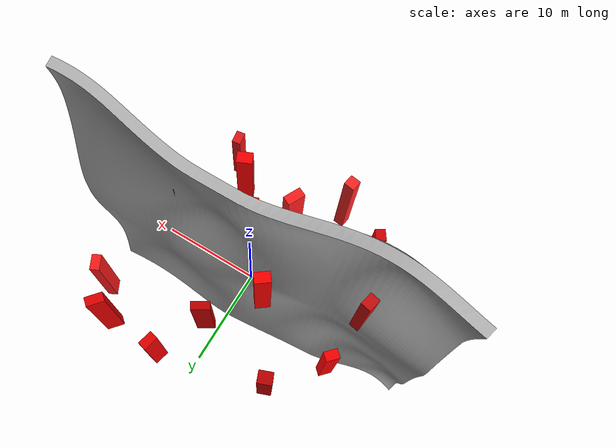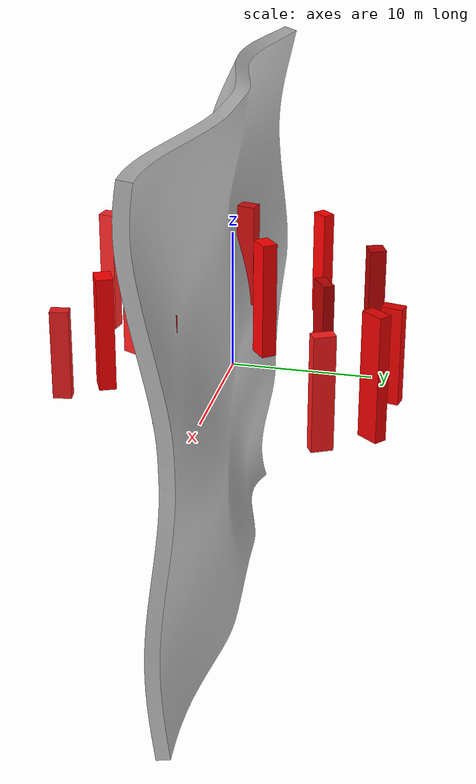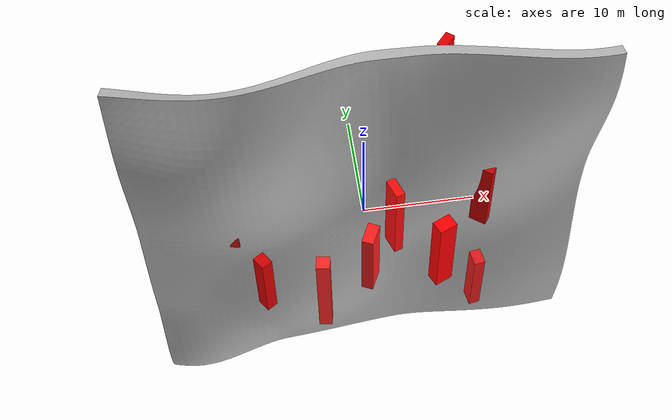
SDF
<?xml version="1.0" ?>
<sdf version="1.8">
  <world name="terrain_world">

    <physics name="1ms" type="ignored">
      <max_step_size>0.005</max_step_size>
      <real_time_factor>1.0</real_time_factor>
      <dart>
        <collision_detector>bullet</collision_detector>
      </dart>
    </physics>

    <plugin
      filename="gz-sim-physics-system"
      name="gz::sim::systems::Physics">
    </plugin>
    <plugin
      filename="gz-sim-sensors-system"
      name="gz::sim::systems::Sensors">
    </plugin>
    <plugin
      filename="gz-sim-scene-broadcaster-system"
      name="gz::sim::systems::SceneBroadcaster">
    </plugin>
    <plugin
      filename="gz-sim-user-commands-system"
      name="gz::sim::systems::UserCommands">
    </plugin>
    <plugin filename="gz-sim-imu-system"
      name="gz::sim::systems::Imu">
    </plugin>

    <light type="directional" name="sun">
      <cast_shadows>false</cast_shadows>
      <pose>0 0 20 0 0 0</pose>
      <diffuse>1 1 1 1</diffuse>
      <specular>0.5 0.5 0.5 1</specular>
      <direction>-0.5 0.1 -0.9</direction>
    </light>

    <model name="terrain_model">
      <static>true</static>
      <link name="terrain">
        <collision name="collision">
          <max_contacts>4</max_contacts>
          <geometry>
            <mesh>
              <uri>model://terrain_rover_sim/models/world_models/mesh.stl</uri>
              <scale>1 1 1</scale>
            </mesh>
          </geometry>
          <surface>
            <friction>
              <ode>
                <mu>3.0</mu>
                <mu2>3.0</mu2>
              </ode>
              <bullet>
                <friction>3.0</friction>
                <friction2>3.0</friction2>
                <rolling_friction>0.2</rolling_friction>
              </bullet>
            </friction>
            <contact><ode><kp>1000000.0</kp><kd>10.0</kd></ode></contact>
          </surface>
        </collision>
        <visual name="visual">
          <pose>0 0 0 1.5708 0 0</pose>
          <geometry>
            <mesh>
              <uri>model://terrain_rover_sim/models/world_models/mesh.glb</uri>
              <scale>1 1 1</scale>
            </mesh>
          </geometry>
        </visual>
      </link>
    </model>

    <model name="red_box_1">
      <static>true</static>
      <pose>-11.2 4.5 4.0 0 0 0.82</pose>
      <link name="link">
        <collision name="collision"><geometry><box><size>1.3 0.9 8.0</size></box></geometry></collision>
        <visual name="visual">
          <geometry><box><size>1.3 0.9 8.0</size></box></geometry>
          <material><ambient>1 0 0 1</ambient><diffuse>1 0 0 1</diffuse></material>
        </visual>
      </link>
    </model>

    <model name="red_box_2">
      <static>true</static>
      <pose>3.5 11.8 3.5 0 0 -0.22</pose>
      <link name="link">
        <collision name="collision"><geometry><box><size>0.9 1.5 7.0</size></box></geometry></collision>
        <visual name="visual">
          <geometry><box><size>0.9 1.5 7.0</size></box></geometry>
          <material><ambient>0.9 0 0 1</ambient><diffuse>0.9 0 0 1</diffuse></material>
        </visual>
      </link>
    </model>

    <model name="red_box_3">
      <static>true</static>
      <pose>-4.8 -10.5 4.5 0 0 1.41</pose>
      <link name="link">
        <collision name="collision"><geometry><box><size>1.1 1.1 9.0</size></box></geometry></collision>
        <visual name="visual">
          <geometry><box><size>1.1 1.1 9.0</size></box></geometry>
          <material><ambient>1 0.15 0.15 1</ambient><diffuse>1 0.15 0.15 1</diffuse></material>
        </visual>
      </link>
    </model>

    <model name="red_box_4">
      <static>true</static>
      <pose>10.1 -2.3 3.8 0 0 -0.65</pose>
      <link name="link">
        <collision name="collision"><geometry><box><size>1.6 0.8 7.6</size></box></geometry></collision>
        <visual name="visual">
          <geometry><box><size>1.6 0.8 7.6</size></box></geometry>
          <material><ambient>0.8 0 0 1</ambient><diffuse>0.8 0 0 1</diffuse></material>
        </visual>
      </link>
    </model>

    <model name="red_box_5">
      <static>true</static>
      <pose>2.1 -3.8 4.2 0 0 0.33</pose>
      <link name="link">
        <collision name="collision"><geometry><box><size>0.8 1.8 8.4</size></box></geometry></collision>
        <visual name="visual">
          <geometry><box><size>0.8 1.8 8.4</size></box></geometry>
          <material><ambient>1 0.05 0.05 1</ambient><diffuse>1 0.05 0.05 1</diffuse></material>
        </visual>
      </link>
    </model>

    <model name="red_box_6">
      <static>true</static>
      <pose>-9.5 -8.2 3.4 0 0 2.15</pose>
      <link name="link">
        <collision name="collision"><geometry><box><size>1.2 1.0 6.8</size></box></geometry></collision>
        <visual name="visual">
          <geometry><box><size>1.2 1.0 6.8</size></box></geometry>
          <material><ambient>0.85 0 0 1</ambient><diffuse>0.85 0 0 1</diffuse></material>
        </visual>
      </link>
    </model>

    <model name="red_box_7">
      <static>true</static>
      <pose>11.5 8.4 4.0 0 0 -1.10</pose>
      <link name="link">
        <collision name="collision"><geometry><box><size>1.5 0.9 8.0</size></box></geometry></collision>
        <visual name="visual">
          <geometry><box><size>1.5 0.9 8.0</size></box></geometry>
          <material><ambient>1 0.1 0.1 1</ambient><diffuse>1 0.1 0.1 1</diffuse></material>
        </visual>
      </link>
    </model>

    <model name="red_box_8">
      <static>true</static>
      <pose>1.2 6.7 3.7 0 0 0.55</pose>
      <link name="link">
        <collision name="collision"><geometry><box><size>1.8 0.8 7.4</size></box></geometry></collision>
        <visual name="visual">
          <geometry><box><size>1.8 0.8 7.4</size></box></geometry>
          <material><ambient>0.75 0 0 1</ambient><diffuse>0.75 0 0 1</diffuse></material>
        </visual>
      </link>
    </model>

    <model name="red_box_9">
      <static>true</static>
      <pose>-2.4 1.8 4.3 0 0 -0.92</pose>
      <link name="link">
        <collision name="collision"><geometry><box><size>1.1 1.6 8.6</size></box></geometry></collision>
        <visual name="visual">
          <geometry><box><size>1.1 1.6 8.6</size></box></geometry>
          <material><ambient>1 0 0 1</ambient><diffuse>1 0 0 1</diffuse></material>
        </visual>
      </link>
    </model>

    <model name="red_box_10">
      <static>true</static>
      <pose>7.8 -10.2 3.2 0 0 0.15</pose>
      <link name="link">
        <collision name="collision"><geometry><box><size>0.9 1.3 6.4</size></box></geometry></collision>
        <visual name="visual">
          <geometry><box><size>0.9 1.3 6.4</size></box></geometry>
          <material><ambient>0.9 0.1 0.1 1</ambient><diffuse>0.9 0.1 0.1 1</diffuse></material>
        </visual>
      </link>
    </model>

    <model name="red_box_11">
      <static>true</static>
      <pose>-11.8 -1.5 4.0 0 0 1.35</pose>
      <link name="link">
        <collision name="collision"><geometry><box><size>1.4 1.1 8.0</size></box></geometry></collision>
        <visual name="visual">
          <geometry><box><size>1.4 1.1 8.0</size></box></geometry>
          <material><ambient>0.8 0.05 0.05 1</ambient><diffuse>0.8 0.05 0.05 1</diffuse></material>
        </visual>
      </link>
    </model>

    <model name="red_box_12">
      <static>true</static>
      <pose>-0.5 -7.2 3.6 0 0 -0.45</pose>
      <link name="link">
        <collision name="collision"><geometry><box><size>1.0 1.9 7.2</size></box></geometry></collision>
        <visual name="visual">
          <geometry><box><size>1.0 1.9 7.2</size></box></geometry>
          <material><ambient>1 0.12 0.12 1</ambient><diffuse>1 0.12 0.12 1</diffuse></material>
        </visual>
      </link>
    </model>

    <model name="red_box_13">
      <static>true</static>
      <pose>9.2 11.4 4.4 0 0 0.88</pose>
      <link name="link">
        <collision name="collision"><geometry><box><size>1.7 0.9 8.8</size></box></geometry></collision>
        <visual name="visual">
          <geometry><box><size>1.7 0.9 8.8</size></box></geometry>
          <material><ambient>0.9 0 0 1</ambient><diffuse>0.9 0 0 1</diffuse></material>
        </visual>
      </link>
    </model>

    <model name="red_box_14">
      <static>true</static>
      <pose>-7.2 9.1 3.5 0 0 -1.20</pose>
      <link name="link">
        <collision name="collision"><geometry><box><size>1.2 1.4 7.0</size></box></geometry></collision>
        <visual name="visual">
          <geometry><box><size>1.2 1.4 7.0</size></box></geometry>
          <material><ambient>0.75 0 0 1</ambient><diffuse>0.75 0 0 1</diffuse></material>
        </visual>
      </link>
    </model>

    <model name="red_box_15">
      <static>true</static>
      <pose>5.5 -7.8 4.1 0 0 0.42</pose>
      <link name="link">
        <collision name="collision"><geometry><box><size>1.6 1.2 8.2</size></box></geometry></collision>
        <visual name="visual">
          <geometry><box><size>1.6 1.2 8.2</size></box></geometry>
          <material><ambient>1 0 0 1</ambient><diffuse>1 0 0 1</diffuse></material>
        </visual>
      </link>
    </model>

  </world>
</sdf>
